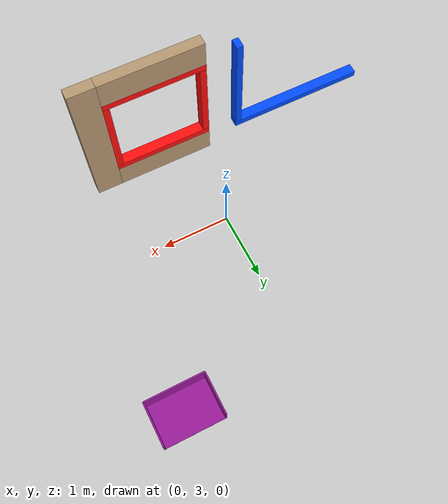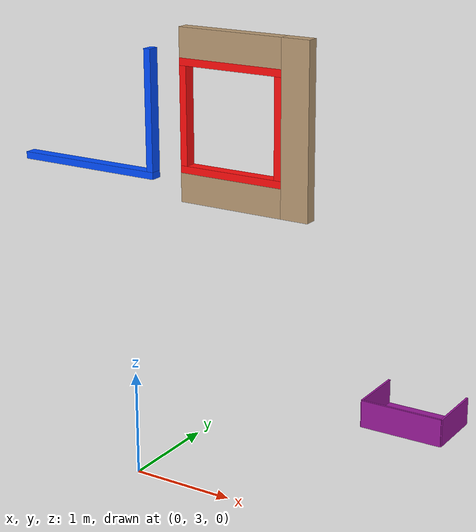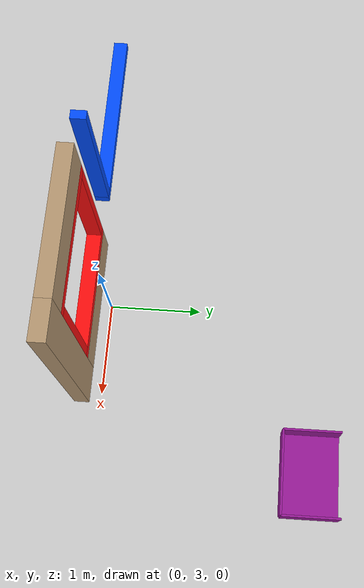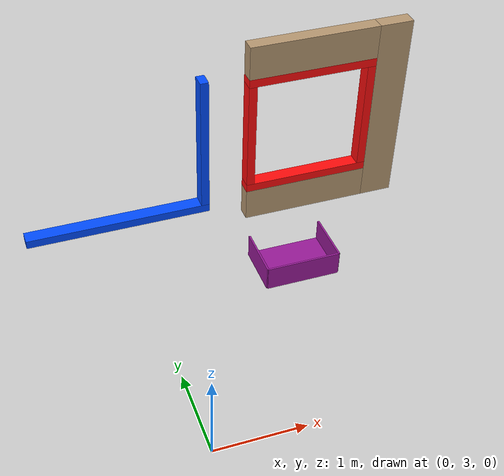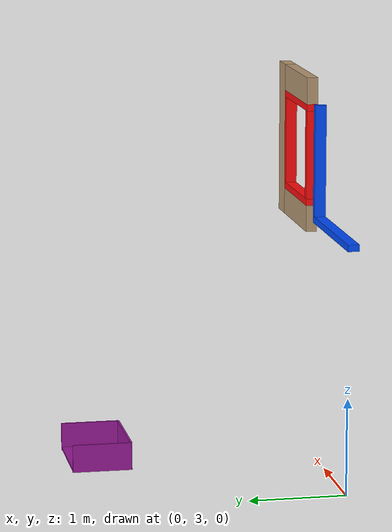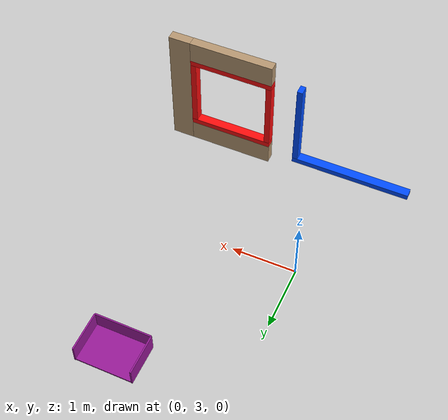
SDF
<sdf version="1.9">
 <world name="imav2026_scaled">
  <model name="obs_wall_bd_R">
   <static>true</static>
   <pose>1.518 3.3 3.41 0 0 0</pose>
   <link name="link">
    <collision name="col"><geometry><box><size>0.264 0.11 1.54</size></box></geometry></collision>
    <visual name="v">
     <geometry><box><size>0.264 0.11 1.54</size></box></geometry>
     <material>
      <ambient>0.72 0.60 0.45 1</ambient>
      <diffuse>0.72 0.60 0.45 1</diffuse>
      <pbr><metal><roughness>0.8</roughness><metalness>0.0</metalness></metal></pbr>
     </material>
    </visual>
   </link>
  </model>
  <model name="obs_wall_bd_B_red">
   <static>true</static>
   <pose>0.88 3.3 2.772 0 0 0</pose>
   <link name="link">
    <collision name="col"><geometry><box><size>1.012 0.11 0.264</size></box></geometry></collision>
    <visual name="v">
     <geometry><box><size>1.012 0.11 0.264</size></box></geometry>
     <material>
      <ambient>0.72 0.60 0.45 1</ambient>
      <diffuse>0.72 0.60 0.45 1</diffuse>
      <pbr><metal><roughness>0.8</roughness><metalness>0.0</metalness></metal></pbr>
     </material>
    </visual>
   </link>
  </model>
  <model name="obs_wall_bd_T_red">
   <static>true</static>
   <pose>0.88 3.3 4.048 0 0 0</pose>
   <link name="link">
    <collision name="col"><geometry><box><size>1.012 0.11 0.264</size></box></geometry></collision>
    <visual name="v">
     <geometry><box><size>1.012 0.11 0.264</size></box></geometry>
     <material>
      <ambient>0.72 0.60 0.45 1</ambient>
      <diffuse>0.72 0.60 0.45 1</diffuse>
      <pbr><metal><roughness>0.8</roughness><metalness>0.0</metalness></metal></pbr>
     </material>
    </visual>
   </link>
  </model>
  <model name="obs_wall_blue_bot">
   <static>true</static>
   <pose>-0.66 3.3 2.827 0 0 0</pose>
   <link name="link">
    <collision name="col"><geometry><box><size>1.452 0.11 0.066</size></box></geometry></collision>
    <visual name="v">
     <geometry><box><size>1.452 0.11 0.066</size></box></geometry>
     <material>
      <ambient>0.0 0.3 1.0 1</ambient>
      <diffuse>0.0 0.3 1.0 1</diffuse>
      <pbr><metal><roughness>0.5</roughness><metalness>0.0</metalness></metal></pbr>
     </material>
    </visual>
   </link>
  </model>
  <model name="obs_wall_blue_R">
   <static>true</static>
   <pose>0.033 3.3 3.41 0 0 0</pose>
   <link name="link">
    <collision name="col"><geometry><box><size>0.066 0.11 1.1</size></box></geometry></collision>
    <visual name="v">
     <geometry><box><size>0.066 0.11 1.1</size></box></geometry>
     <material>
      <ambient>0.0 0.3 1.0 1</ambient>
      <diffuse>0.0 0.3 1.0 1</diffuse>
      <pbr><metal><roughness>0.5</roughness><metalness>0.0</metalness></metal></pbr>
     </material>
    </visual>
   </link>
  </model>
  <model name="obs_wall_red_top">
   <static>true</static>
   <pose>0.88 3.3 3.883 0 0 0</pose>
   <link name="link">
    <collision name="col"><geometry><box><size>1.012 0.11 0.066</size></box></geometry></collision>
    <visual name="v">
     <geometry><box><size>1.012 0.11 0.066</size></box></geometry>
     <material>
      <ambient>1.0 0.05 0.05 1</ambient>
      <diffuse>1.0 0.05 0.05 1</diffuse>
      <pbr><metal><roughness>0.5</roughness><metalness>0.0</metalness></metal></pbr>
     </material>
    </visual>
   </link>
  </model>
  <model name="obs_wall_red_bot">
   <static>true</static>
   <pose>0.88 3.3 2.937 0 0 0</pose>
   <link name="link">
    <collision name="col"><geometry><box><size>1.012 0.11 0.066</size></box></geometry></collision>
    <visual name="v">
     <geometry><box><size>1.012 0.11 0.066</size></box></geometry>
     <material>
      <ambient>1.0 0.05 0.05 1</ambient>
      <diffuse>1.0 0.05 0.05 1</diffuse>
      <pbr><metal><roughness>0.5</roughness><metalness>0.0</metalness></metal></pbr>
     </material>
    </visual>
   </link>
  </model>
  <model name="obs_wall_red_L">
   <static>true</static>
   <pose>0.407 3.3 3.41 0 0 0</pose>
   <link name="link">
    <collision name="col"><geometry><box><size>0.066 0.11 0.88</size></box></geometry></collision>
    <visual name="v">
     <geometry><box><size>0.066 0.11 0.88</size></box></geometry>
     <material>
      <ambient>1.0 0.05 0.05 1</ambient>
      <diffuse>1.0 0.05 0.05 1</diffuse>
      <pbr><metal><roughness>0.5</roughness><metalness>0.0</metalness></metal></pbr>
     </material>
    </visual>
   </link>
  </model>
  <model name="obs_wall_red_R">
   <static>true</static>
   <pose>1.353 3.3 3.41 0 0 0</pose>
   <link name="link">
    <collision name="col"><geometry><box><size>0.066 0.11 0.88</size></box></geometry></collision>
    <visual name="v">
     <geometry><box><size>0.066 0.11 0.88</size></box></geometry>
     <material>
      <ambient>1.0 0.05 0.05 1</ambient>
      <diffuse>1.0 0.05 0.05 1</diffuse>
      <pbr><metal><roughness>0.5</roughness><metalness>0.0</metalness></metal></pbr>
     </material>
    </visual>
   </link>
  </model>
  <model name="box_purple_floor">
   <static>true</static>
   <pose>1.7556 5.28 0.022 0 0 0</pose>
   <link name="link">
    <collision name="col"><geometry><box><size>0.8712 0.6116 0.022</size></box></geometry></collision>
    <visual name="v">
     <geometry><box><size>0.8712 0.6116 0.022</size></box></geometry>
     <material>
      <ambient>0.6 0.1 0.6 1</ambient>
      <diffuse>0.6 0.1 0.6 1</diffuse>
      <pbr><metal><roughness>0.5</roughness><metalness>0.0</metalness></metal></pbr>
     </material>
    </visual>
   </link>
  </model>
  <model name="box_purple_wallS">
   <static>true</static>
   <pose>1.7556 4.9742 0.1452 0 0 0</pose>
   <link name="link">
    <collision name="col"><geometry><box><size>0.8712 0.022 0.2904</size></box></geometry></collision>
    <visual name="v">
     <geometry><box><size>0.8712 0.022 0.2904</size></box></geometry>
     <material>
      <ambient>0.6 0.1 0.6 1</ambient>
      <diffuse>0.6 0.1 0.6 1</diffuse>
      <pbr><metal><roughness>0.5</roughness><metalness>0.0</metalness></metal></pbr>
     </material>
    </visual>
   </link>
  </model>
  <model name="box_purple_wallE">
   <static>true</static>
   <pose>2.1912 5.28 0.1452 0 0 0</pose>
   <link name="link">
    <collision name="col"><geometry><box><size>0.022 0.6116 0.2904</size></box></geometry></collision>
    <visual name="v">
     <geometry><box><size>0.022 0.6116 0.2904</size></box></geometry>
     <material>
      <ambient>0.6 0.1 0.6 1</ambient>
      <diffuse>0.6 0.1 0.6 1</diffuse>
      <pbr><metal><roughness>0.5</roughness><metalness>0.0</metalness></metal></pbr>
     </material>
    </visual>
   </link>
  </model>
  <model name="box_purple_wallW">
   <static>true</static>
   <pose>1.32 5.28 0.1452 0 0 0</pose>
   <link name="link">
    <collision name="col"><geometry><box><size>0.022 0.6116 0.2904</size></box></geometry></collision>
    <visual name="v">
     <geometry><box><size>0.022 0.6116 0.2904</size></box></geometry>
     <material>
      <ambient>0.6 0.1 0.6 1</ambient>
      <diffuse>0.6 0.1 0.6 1</diffuse>
      <pbr><metal><roughness>0.5</roughness><metalness>0.0</metalness></metal></pbr>
     </material>
    </visual>
   </link>
  </model>
 </world>
</sdf>
